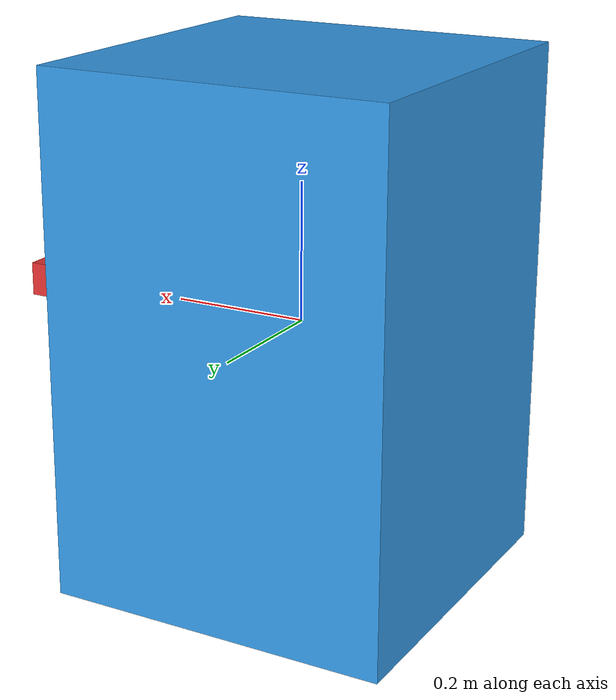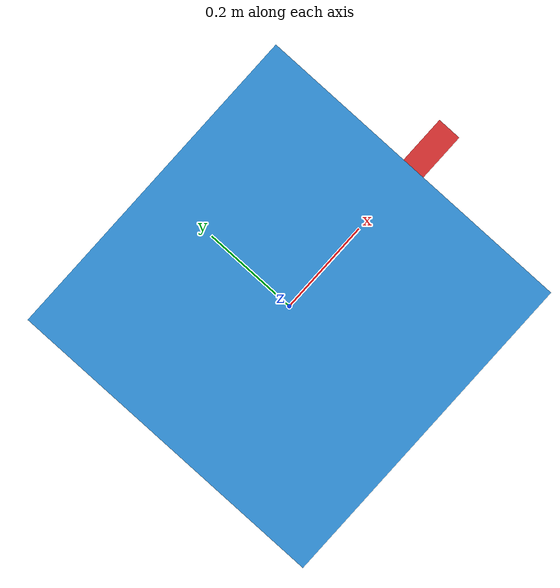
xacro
<?xml version="1.0"?>
<robot name="bb_freeflyer" xmlns:xacro="http://www.ros.org/wiki/xacro">
<!-- Parameters -->
<xacro:property name="mass" value="15.0"/>
<xacro:property name="x" value="0.5"/>    <!-- side length -->
<xacro:property name="Izz" value="${mass/12.0 * (x*x + x*x)}"/>

<link name="base_link">
    <visual>
        <geometry>
            <box size="${x} ${x} 0.75"/>
        </geometry>
        <material name = "blue">
            <color rgba="0.2 0.6 0.9 1"/>
        </material>
    </visual>

    <collision>
        <geometry>
            <box size="${x} ${x} 0.75"/>
        </geometry>
    </collision>

    <inertial>
        <mass value="${mass}"/>
        <origin xyz="0 0 0"/>
        <inertia
            ixx="0.05"
            iyy="0.05"
            izz="${Izz}"
            ixy="0.0"
            ixz="0.0"
            iyz="0.0"/>
    </inertial>
</link>

<link name="nose_link">
    <visual>
    <geometry>
        <box size="0.2 0.05 0.05"/>
    </geometry>
    <material name="red">
        <color rgba="0.9 0.2 0.2 1"/>
    </material>
</visual>
</link>

<joint name="nose_joint" type="fixed">
    <parent link="base_link"/>
    <child link="nose_link"/>
    <origin xyz="${x/2 + 0.1} 0 0"/>
</joint>

<!--          IMU          -->
<gazebo reference="base_link">
    <material>Gazebo/Blue</material>
    <sensor name="imu_sensor" type="imu">
        <always_on>true</always_on>
        <update_rate>100.0</update_rate>
        <visualize>false</visualize>
        <topic>/imu/data_raw</topic>
        <imu>
            <angular_velocity>
                <x>
                    <noise type="gaussian">
                        <mean>0.0</mean>
                        <stddev>2.0e-4</stddev>
                    </noise>
                </x>
                <y>
                    <noise type="gaussian">
                        <mean>0.0</mean>
                        <stddev>2.0e-4</stddev>
                    </noise>
                </y>
                <z>
                    <noise type="gaussian">
                        <mean>0.0</mean>
                        <stddev>2.0e-4</stddev>
                    </noise>
                </z>
            </angular_velocity>
            <linear_acceleration>
                <x>
                    <noise type="gaussian">
                        <mean>0.0</mean>
                        <stddev>2.0e-3</stddev>
                    </noise>
                </x>
                <y>
                    <noise type="gaussian">
                        <mean>0.0</mean>
                        <stddev>2.0e-3</stddev>
                    </noise>
                </y>
                <z>
                    <noise type="gaussian">
                        <mean>0.0</mean>
                        <stddev>2.0e-3</stddev>
                    </noise>
                </z>
            </linear_acceleration>
        </imu>
        <plugin name="imu_plugin" filename="libgazebo_ros_imu_sensor.so">
            <ros>
                <remapping>~/out:=/imu/data_raw</remapping>
            </ros>
            <frame_name>base_link</frame_name>
        </plugin>
    </sensor>
</gazebo>

<gazebo reference="nose_link">
    <material>Gazebo/Red</material>
</gazebo>

<!-- Reaction wheel plugin -->
<gazebo>
  <plugin name="reaction_wheel" filename="libbang_bang_reaction_wheel.so">
    <ros_namespace>/freeflyer</ros_namespace>
    <body_link>base_link</body_link>

    <!-- torque about body Z -->
    <axis xyz="0 0 1"/>
    <tau_max>0.05</tau_max>

    <!-- topics relative to namespace -->
    <topic_cw>reaction_wheel/cw</topic_cw>
    <topic_ccw>reaction_wheel/ccw</topic_ccw>
  </plugin>
</gazebo>
<!-- Bang-bang thrusters  -->

<!-- +X thruster -->
<gazebo>
  <plugin name="thruster_px" filename="libcontinuous_thruster.so">
    <ros_namespace>/freeflyer</ros_namespace>
    <body_link>base_link</body_link>

    <application_point xyz="0 0 0"/>
    <thrust_axis xyz="1 0 0"/>
    <max_thrust>2.0</max_thrust>
    <publish_odom>true</publish_odom>
    <odom_topic>/odom</odom_topic>

    <command_topic>thrusters/px</command_topic>
  </plugin>
</gazebo>

<!-- -X thruster -->
<gazebo>
  <plugin name="thruster_nx" filename="libcontinuous_thruster.so">
    <ros_namespace>/freeflyer</ros_namespace>
    <body_link>base_link</body_link>

    <application_point xyz="0 0 0"/>
    <thrust_axis xyz="-1 0 0"/>
    <max_thrust>2.0</max_thrust>

    <command_topic>thrusters/nx</command_topic>
  </plugin>
</gazebo>

<!-- +Y thruster -->
<gazebo>
  <plugin name="thruster_py" filename="libcontinuous_thruster.so">
    <ros_namespace>/freeflyer</ros_namespace>
    <body_link>base_link</body_link>

    <application_point xyz="0 0 0"/>
    <thrust_axis xyz="0 1 0"/>
    <max_thrust>2.0</max_thrust>

    <command_topic>thrusters/py</command_topic>
  </plugin>
</gazebo>

<!-- -Y thruster -->
<gazebo>
  <plugin name="thruster_ny" filename="libcontinuous_thruster.so">
    <ros_namespace>/freeflyer</ros_namespace>
    <body_link>base_link</body_link>

    <application_point xyz="0 0 0"/>
    <thrust_axis xyz="0 -1 0"/>
    <max_thrust>2.0</max_thrust>

    <command_topic>thrusters/ny</command_topic>
  </plugin>
</gazebo>

</robot>
